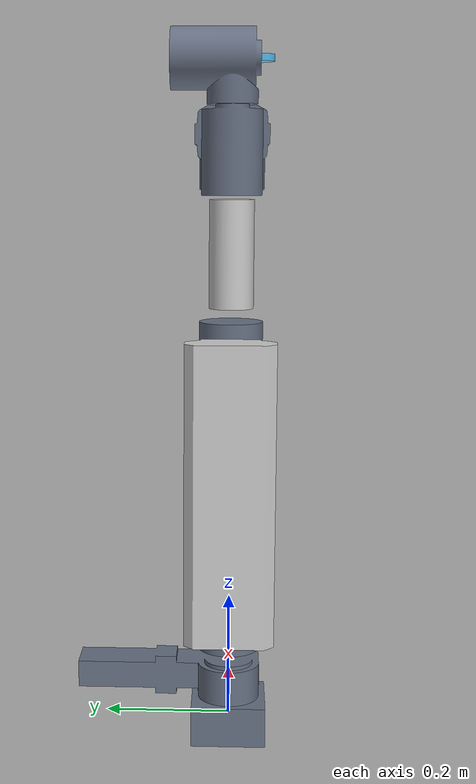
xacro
<?xml version="1.0" ?>
<robot name="Arm" xmlns:xacro="http://www.ros.org/wiki/xacro">

<xacro:include filename="$(find Arm_description)/urdf/materials.xacro" />
<xacro:include filename="$(find Arm_description)/urdf/Arm.ros2control" />
<xacro:include filename="$(find Arm_description)/urdf/Arm.gazebo" />
<link name="base_link">
  <inertial>
    <origin xyz="-5.020263307560622e-16 -1.4955452031907725e-15 -0.003500000000000514" rpy="0 0 0"/>
    <mass value="7.347599999999994"/>
    <inertia ixx="0.011404" iyy="0.011404" izz="0.017634" ixy="0.0" iyz="-0.0" ixz="0.0"/>
  </inertial>
  <visual>
    <origin xyz="0 0 0" rpy="0 0 0"/>
    <geometry>
      <mesh filename="file://$(find Arm_description)/meshes/base_link.stl" scale="0.001 0.001 0.001"/>
    </geometry>
    <material name="part"/>
  </visual>
  <collision>
    <origin xyz="0 0 0" rpy="0 0 0"/>
    <geometry>
      <mesh filename="file://$(find Arm_description)/meshes/base_link.stl" scale="0.001 0.001 0.001"/>
    </geometry>
  </collision>
</link>

<link name="link_2">
  <inertial>
    <origin xyz="-0.049810162062759074 1.589806884183531e-07 0.19500005414972732" rpy="0 0 0"/>
    <mass value="38.40870266620278"/>
    <inertia ixx="0.764658" iyy="0.736453" izz="0.07174" ixy="0.0" iyz="-0.0" ixz="0.0"/>
  </inertial>
  <visual>
    <origin xyz="0.0371 0.0 -0.1755" rpy="0 0 0"/>
    <geometry>
      <mesh filename="file://$(find Arm_description)/meshes/link_2_1.stl" scale="0.001 0.001 0.001"/>
    </geometry>
    <material name="light_grey"/>
  </visual>
  <collision>
    <origin xyz="0.0371 0.0 -0.1755" rpy="0 0 0"/>
    <geometry>
      <mesh filename="file://$(find Arm_description)/meshes/link_2_1.stl" scale="0.001 0.001 0.001"/>
    </geometry>
  </collision>
</link>

<link name="link_3">
  <inertial>
    <origin xyz="1.0203770296837744e-15 3.552713678800501e-16 0.1025001624746138" rpy="0 0 0"/>
    <mass value="6.19311977279174"/>
    <inertia ixx="0.023585" iyy="0.023585" izz="0.003793" ixy="0.0" iyz="0.0" ixz="0.0"/>
  </inertial>
  <visual>
    <origin xyz="-0.0 0.0 -0.6505" rpy="0 0 0"/>
    <geometry>
      <mesh filename="file://$(find Arm_description)/meshes/link_3_1.stl" scale="0.001 0.001 0.001"/>
    </geometry>
    <material name="light_grey"/>
  </visual>
  <collision>
    <origin xyz="-0.0 0.0 -0.6505" rpy="0 0 0"/>
    <geometry>
      <mesh filename="file://$(find Arm_description)/meshes/link_3_1.stl" scale="0.001 0.001 0.001"/>
    </geometry>
  </collision>
</link>

<link name="joint_1">
  <inertial>
    <origin xyz="0.02779117383103278 0.07203746755556571 0.029099449641664183" rpy="0 0 0"/>
    <mass value="9.796999285044631"/>
    <inertia ixx="0.074413" iyy="0.011341" izz="0.081054" ixy="-0.01025" iyz="0.000668" ixz="0.00026"/>
  </inertial>
  <visual>
    <origin xyz="0.0 0.0 -0.029" rpy="0 0 0"/>
    <geometry>
      <mesh filename="file://$(find Arm_description)/meshes/joint_1_1.stl" scale="0.001 0.001 0.001"/>
    </geometry>
    <material name="part"/>
  </visual>
  <collision>
    <origin xyz="0.0 0.0 -0.029" rpy="0 0 0"/>
    <geometry>
      <mesh filename="file://$(find Arm_description)/meshes/joint_1_1.stl" scale="0.001 0.001 0.001"/>
    </geometry>
  </collision>
</link>

<link name="joint_2">
  <inertial>
    <origin xyz="0.03366406008832746 2.4438716015897533e-06 0.07394555512414713" rpy="0 0 0"/>
    <mass value="14.113695138598164"/>
    <inertia ixx="0.029282" iyy="0.043537" izz="0.037906" ixy="-0.0" iyz="-2e-06" ixz="-0.004646"/>
  </inertial>
  <visual>
    <origin xyz="0.0 0.0 -0.0925" rpy="0 0 0"/>
    <geometry>
      <mesh filename="file://$(find Arm_description)/meshes/joint_2_1.stl" scale="0.001 0.001 0.001"/>
    </geometry>
    <material name="part"/>
  </visual>
  <collision>
    <origin xyz="0.0 0.0 -0.0925" rpy="0 0 0"/>
    <geometry>
      <mesh filename="file://$(find Arm_description)/meshes/joint_2_1.stl" scale="0.001 0.001 0.001"/>
    </geometry>
  </collision>
</link>

<link name="joint_3">
  <inertial>
    <origin xyz="0.07076406008832989 -2.4438716071775458e-06 0.009054607350454491" rpy="0 0 0"/>
    <mass value="14.113695138598164"/>
    <inertia ixx="0.029282" iyy="0.043537" izz="0.037906" ixy="0.0" iyz="-2e-06" ixz="0.004646"/>
  </inertial>
  <visual>
    <origin xyz="0.0371 0.0 -0.5675" rpy="0 0 0"/>
    <geometry>
      <mesh filename="file://$(find Arm_description)/meshes/joint_3_1.stl" scale="0.001 0.001 0.001"/>
    </geometry>
    <material name="part"/>
  </visual>
  <collision>
    <origin xyz="0.0371 0.0 -0.5675" rpy="0 0 0"/>
    <geometry>
      <mesh filename="file://$(find Arm_description)/meshes/joint_3_1.stl" scale="0.001 0.001 0.001"/>
    </geometry>
  </collision>
</link>

<link name="joint_4">
  <inertial>
    <origin xyz="0.0336640600883303 2.443871592397065e-06 0.07394571759876645" rpy="0 0 0"/>
    <mass value="14.113695138598164"/>
    <inertia ixx="0.029282" iyy="0.043537" izz="0.037906" ixy="-0.0" iyz="-2e-06" ixz="-0.004646"/>
  </inertial>
  <visual>
    <origin xyz="-0.0 -0.0 -0.8555" rpy="0 0 0"/>
    <geometry>
      <mesh filename="file://$(find Arm_description)/meshes/joint_4_1.stl" scale="0.001 0.001 0.001"/>
    </geometry>
    <material name="part"/>
  </visual>
  <collision>
    <origin xyz="-0.0 -0.0 -0.8555" rpy="0 0 0"/>
    <geometry>
      <mesh filename="file://$(find Arm_description)/meshes/joint_4_1.stl" scale="0.001 0.001 0.001"/>
    </geometry>
  </collision>
</link>

<link name="joint_5">
  <inertial>
    <origin xyz="-0.058784357231620475 2.0314674387122977e-08 -0.02392347991923094" rpy="0 0 0"/>
    <mass value="7.117801366510355"/>
    <inertia ixx="0.012602" iyy="0.014343" izz="0.008719" ixy="-0.0" iyz="-0.0" ixz="-0.001058"/>
  </inertial>
  <visual>
    <origin xyz="0.0371 0.0 -0.9385" rpy="0 0 0"/>
    <geometry>
      <mesh filename="file://$(find Arm_description)/meshes/joint_5_1.stl" scale="0.001 0.001 0.001"/>
    </geometry>
    <material name="part"/>
  </visual>
  <collision>
    <origin xyz="0.0371 0.0 -0.9385" rpy="0 0 0"/>
    <geometry>
      <mesh filename="file://$(find Arm_description)/meshes/joint_5_1.stl" scale="0.001 0.001 0.001"/>
    </geometry>
  </collision>
</link>

<link name="joint_6">
  <inertial>
    <origin xyz="-3.2284747548960713e-07 0.02392364239352567 0.058784174788324095" rpy="0 0 0"/>
    <mass value="7.117801366510355"/>
    <inertia ixx="0.014343" iyy="0.008719" izz="0.012602" ixy="0.0" iyz="-0.001058" ixz="0.0"/>
  </inertial>
  <visual>
    <origin xyz="0.1021 0.0 -0.9793" rpy="0 0 0"/>
    <geometry>
      <mesh filename="file://$(find Arm_description)/meshes/joint_6_1.stl" scale="0.001 0.001 0.001"/>
    </geometry>
    <material name="part"/>
  </visual>
  <collision>
    <origin xyz="0.1021 0.0 -0.9793" rpy="0 0 0"/>
    <geometry>
      <mesh filename="file://$(find Arm_description)/meshes/joint_6_1.stl" scale="0.001 0.001 0.001"/>
    </geometry>
  </collision>
</link>

<link name="flange">
  <inertial>
    <origin xyz="0.0 0.0 0.0" rpy="0 0 0"/>
    <mass value="0.0"/>
    <inertia ixx="0.0" iyy="0.0" izz="0.02" ixy="0.0" iyz="0.0" ixz="0.0"/>
  </inertial>
  <visual>
    <origin xyz="0.0 0.0 0.0" rpy="0 0 0"/>
    <geometry>
      <cylinder radius="0.02" length="0.01"/>
    </geometry>
  </visual>
  <collision>
    <origin xyz="0.0 0.0 0.0" rpy="0 0 0"/>
    <geometry>
      <cylinder radius="0.02" length="0.01"/>
    </geometry>
  </collision>
</link>

<joint name="base_link_to_joint_1" type="fixed">
  <origin xyz="0.0 0.0 0.029" rpy="0 0 0"/>
  <parent link="base_link"/>
  <child link="joint_1"/>
</joint>

<joint name="joint_1_to_joint_2" type="continuous">
  <origin xyz="0.0 0.0 0.0635" rpy="0 0 0"/>
  <parent link="joint_1"/>
  <child link="joint_2"/>
  <axis xyz="0.0 -0.0 1.0"/>
</joint>

<joint name="joint_2_to_link_2" type="continuous">
  <origin xyz="-0.0371 0.0 0.083" rpy="0 0 0"/>
  <parent link="joint_2"/>
  <child link="link_2"/>
  <axis xyz="-1.0 0.0 0.0"/>
</joint>

<joint name="link_2_to_joint_3" type="continuous">
  <origin xyz="0.0 0.0 0.392" rpy="0 0 0"/>
  <parent link="link_2"/>
  <child link="joint_3"/>
  <axis xyz="1.0 -0.0 -0.0"/>
</joint>

<joint name="joint_3_to_link_3" type="fixed">
  <origin xyz="0.0371 0.0 0.083" rpy="0 0 0"/>
  <parent link="joint_3"/>
  <child link="link_3"/>
</joint>

<joint name="link_3_to_joint_4" type="fixed">
  <origin xyz="0.0 0.0 0.205" rpy="0 0 0"/>
  <parent link="link_3"/>
  <child link="joint_4"/>
</joint>

<joint name="joint_4_to_joint_5" type="continuous">
  <origin xyz="-0.0371 -0.0 0.083" rpy="0 0 0"/>
  <parent link="joint_4"/>
  <child link="joint_5"/>
  <axis xyz="-1.0 -0.0 -0.0"/>
</joint>

<joint name="joint_5_to_joint_6" type="continuous">
  <origin xyz="-0.065 0.0 0.0408" rpy="0 0 0"/>
  <parent link="joint_5"/>
  <child link="joint_6"/>
  <axis xyz="0.0 -0.0 1.0"/>
</joint>

<joint name="joint_6_to_flange" type="continuous">
  <origin xyz="0.0 -0.0408 0.065" rpy="0 0 0"/>
  <parent link="joint_6"/>
  <child link="flange"/>
  <axis xyz="-0.0 -1.0 -0.0"/>
</joint>

</robot>

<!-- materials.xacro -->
<robot name="Arm" xmlns:xacro="http://www.ros.org/wiki/xacro" >

<material name="part">
  <color rgba="0.400 0.439 0.5137 1.000"/>
</material>

<material name="light_grey">
  <color rgba="0.800 0.800 0.800 1.000"/>
</material>

</robot>

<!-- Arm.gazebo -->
<robot name="Arm" xmlns:xacro="http://www.ros.org/wiki/xacro" >

<xacro:property name="body_color" value="Gazebo/Silver" />

<gazebo reference="base_link">
  <material>${body_color}</material>
  <mu1>0.2</mu1>
  <mu2>0.2</mu2>
  <self_collide>true</self_collide>
  <gravity>true</gravity>
</gazebo>

<gazebo reference="joint_1">
  <material>${body_color}</material>
  <mu1>0.2</mu1>
  <mu2>0.2</mu2>
  <self_collide>true</self_collide>
</gazebo>

<gazebo reference="link_3">
  <material>${body_color}</material>
  <mu1>0.2</mu1>
  <mu2>0.2</mu2>
  <self_collide>true</self_collide>
</gazebo>

<gazebo reference="joint_3">
  <material>${body_color}</material>
  <mu1>0.2</mu1>
  <mu2>0.2</mu2>
  <self_collide>true</self_collide>
</gazebo>

<gazebo reference="link_2">
  <material>${body_color}</material>
  <mu1>0.2</mu1>
  <mu2>0.2</mu2>
  <self_collide>true</self_collide>
</gazebo>

<gazebo reference="joint_2">
  <material>${body_color}</material>
  <mu1>0.2</mu1>
  <mu2>0.2</mu2>
  <self_collide>true</self_collide>
</gazebo>

<gazebo reference="joint_6">
  <material>${body_color}</material>
  <mu1>0.2</mu1>
  <mu2>0.2</mu2>
  <self_collide>true</self_collide>
</gazebo>

<gazebo reference="joint_5">
  <material>${body_color}</material>
  <mu1>0.2</mu1>
  <mu2>0.2</mu2>
  <self_collide>true</self_collide>
</gazebo>

<gazebo reference="joint_4">
  <material>${body_color}</material>
  <mu1>0.2</mu1>
  <mu2>0.2</mu2>
  <self_collide>true</self_collide>
</gazebo>

</robot>
